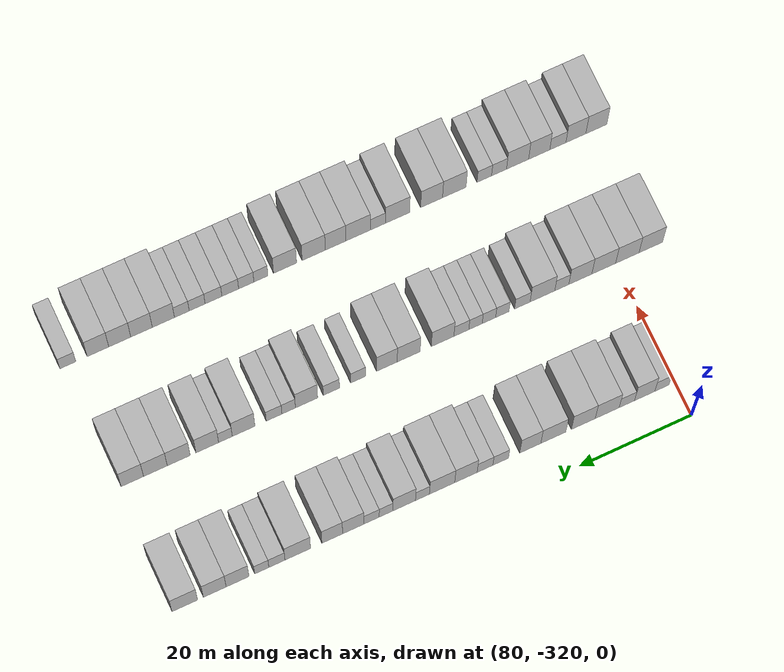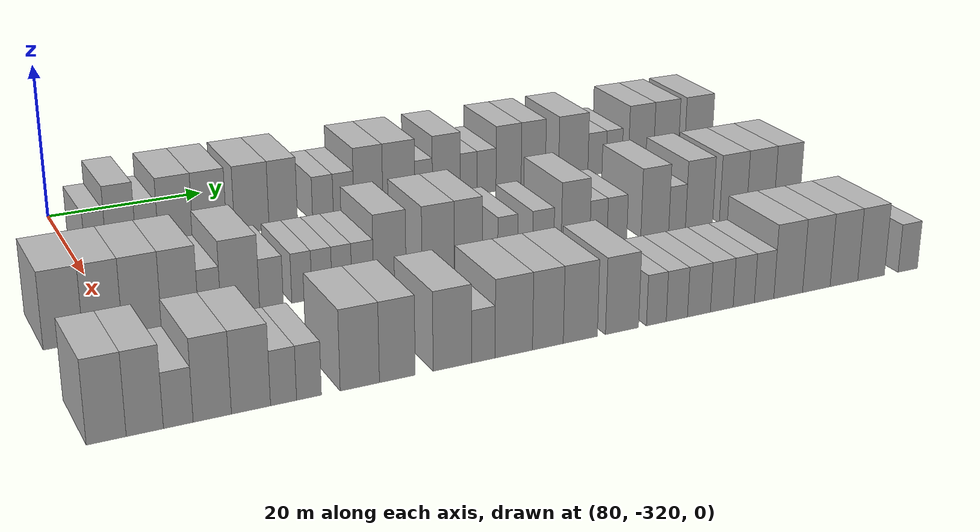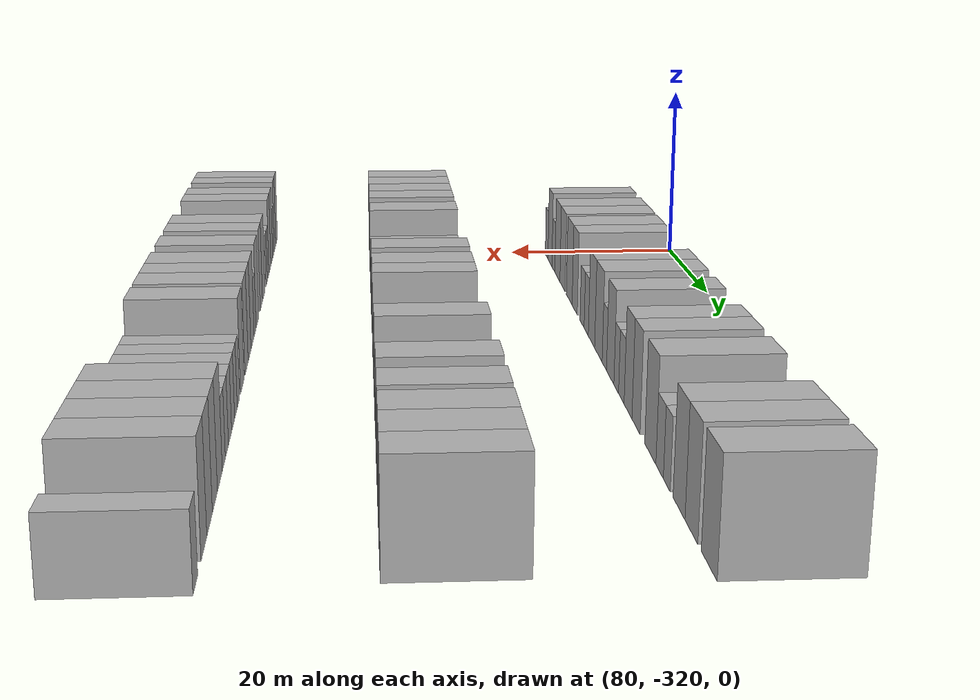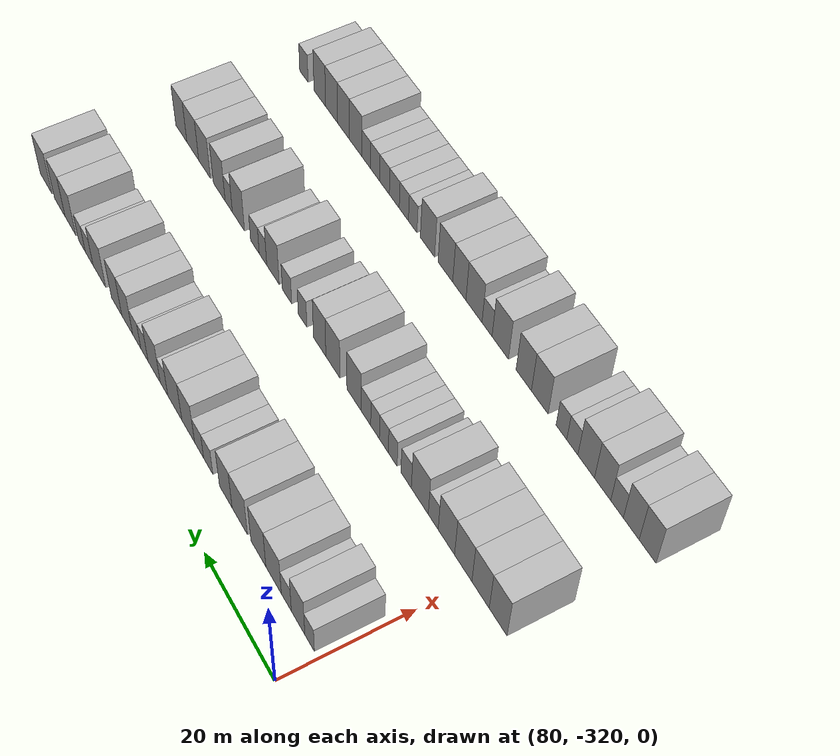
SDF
<sdf version="1.6">
 <world name="default">
  <model name="building_570">
   <static>1</static>
   <pose>91.0000 -317.6164 0 0.000000 0.000000 0.000000</pose>
   <link name="link">
    <pose>0 0 3.00 0 0 0</pose>
    <collision name="collision"><geometry><box><size>10.0000 2.5468 6.0000</size></box></geometry></collision>
    <visual name="visual">
     <cast_shadows>0</cast_shadows>
     <geometry><box><size>10.0000 2.5468 6.0000</size></box></geometry>
     <material>
      <script>
       <uri>model://HANNAS_wall/materials/scripts</uri>
       <uri>model://HANNAS_wall/materials/textures</uri>
       <name>vrc/HANNAS_wall</name>
      </script>
     </material>
    </visual>
   </link>
  </model>
  <model name="building_571">
   <static>1</static>
   <pose>91.0000 -314.5250 0 0.000000 0.000000 0.000000</pose>
   <link name="link">
    <pose>0 0 4.50 0 0 0</pose>
    <collision name="collision"><geometry><box><size>10.0000 3.6360 9.0000</size></box></geometry></collision>
    <visual name="visual">
     <cast_shadows>0</cast_shadows>
     <geometry><box><size>10.0000 3.6360 9.0000</size></box></geometry>
     <material>
      <script>
       <uri>model://HANNAS_wall/materials/scripts</uri>
       <uri>model://HANNAS_wall/materials/textures</uri>
       <name>vrc/HANNAS_wall</name>
      </script>
     </material>
    </visual>
   </link>
  </model>
  <model name="building_572">
   <static>1</static>
   <pose>91.0000 -311.3290 0 0.000000 0.000000 0.000000</pose>
   <link name="link">
    <pose>0 0 3.00 0 0 0</pose>
    <collision name="collision"><geometry><box><size>10.0000 2.7561 6.0000</size></box></geometry></collision>
    <visual name="visual">
     <cast_shadows>0</cast_shadows>
     <geometry><box><size>10.0000 2.7561 6.0000</size></box></geometry>
     <material>
      <script>
       <uri>model://HANNAS_wall/materials/scripts</uri>
       <uri>model://HANNAS_wall/materials/textures</uri>
       <name>vrc/HANNAS_wall</name>
      </script>
     </material>
    </visual>
   </link>
  </model>
  <model name="building_573">
   <static>1</static>
   <pose>91.0000 -307.7948 0 0.000000 0.000000 0.000000</pose>
   <link name="link">
    <pose>0 0 4.50 0 0 0</pose>
    <collision name="collision"><geometry><box><size>10.0000 4.3124 9.0000</size></box></geometry></collision>
    <visual name="visual">
     <cast_shadows>0</cast_shadows>
     <geometry><box><size>10.0000 4.3124 9.0000</size></box></geometry>
     <material>
      <script>
       <uri>model://HANNAS_wall/materials/scripts</uri>
       <uri>model://HANNAS_wall/materials/textures</uri>
       <name>vrc/HANNAS_wall</name>
      </script>
     </material>
    </visual>
   </link>
  </model>
  <model name="building_574">
   <static>1</static>
   <pose>91.0000 -303.5071 0 0.000000 0.000000 0.000000</pose>
   <link name="link">
    <pose>0 0 4.50 0 0 0</pose>
    <collision name="collision"><geometry><box><size>10.0000 4.2628 9.0000</size></box></geometry></collision>
    <visual name="visual">
     <cast_shadows>0</cast_shadows>
     <geometry><box><size>10.0000 4.2628 9.0000</size></box></geometry>
     <material>
      <script>
       <uri>model://HANNAS_wall/materials/scripts</uri>
       <uri>model://HANNAS_wall/materials/textures</uri>
       <name>vrc/HANNAS_wall</name>
      </script>
     </material>
    </visual>
   </link>
  </model>
  <model name="building_575">
   <static>1</static>
   <pose>91.0000 -298.1394 0 0.000000 0.000000 0.000000</pose>
   <link name="link">
    <pose>0 0 4.50 0 0 0</pose>
    <collision name="collision"><geometry><box><size>10.0000 4.4726 9.0000</size></box></geometry></collision>
    <visual name="visual">
     <cast_shadows>0</cast_shadows>
     <geometry><box><size>10.0000 4.4726 9.0000</size></box></geometry>
     <material>
      <script>
       <uri>model://HANNAS_wall/materials/scripts</uri>
       <uri>model://HANNAS_wall/materials/textures</uri>
       <name>vrc/HANNAS_wall</name>
      </script>
     </material>
    </visual>
   </link>
  </model>
  <model name="building_576">
   <static>1</static>
   <pose>91.0000 -294.0252 0 0.000000 0.000000 0.000000</pose>
   <link name="link">
    <pose>0 0 4.50 0 0 0</pose>
    <collision name="collision"><geometry><box><size>10.0000 3.7559 9.0000</size></box></geometry></collision>
    <visual name="visual">
     <cast_shadows>0</cast_shadows>
     <geometry><box><size>10.0000 3.7559 9.0000</size></box></geometry>
     <material>
      <script>
       <uri>model://HANNAS_wall/materials/scripts</uri>
       <uri>model://HANNAS_wall/materials/textures</uri>
       <name>vrc/HANNAS_wall</name>
      </script>
     </material>
    </visual>
   </link>
  </model>
  <model name="building_577">
   <static>1</static>
   <pose>91.0000 -288.7493 0 0.000000 0.000000 0.000000</pose>
   <link name="link">
    <pose>0 0 3.00 0 0 0</pose>
    <collision name="collision"><geometry><box><size>10.0000 2.7958 6.0000</size></box></geometry></collision>
    <visual name="visual">
     <cast_shadows>0</cast_shadows>
     <geometry><box><size>10.0000 2.7958 6.0000</size></box></geometry>
     <material>
      <script>
       <uri>model://HANNAS_wall/materials/scripts</uri>
       <uri>model://HANNAS_wall/materials/textures</uri>
       <name>vrc/HANNAS_wall</name>
      </script>
     </material>
    </visual>
   </link>
  </model>
  <model name="building_578">
   <static>1</static>
   <pose>91.0000 -285.9538 0 0.000000 0.000000 0.000000</pose>
   <link name="link">
    <pose>0 0 3.00 0 0 0</pose>
    <collision name="collision"><geometry><box><size>10.0000 2.7954 6.0000</size></box></geometry></collision>
    <visual name="visual">
     <cast_shadows>0</cast_shadows>
     <geometry><box><size>10.0000 2.7954 6.0000</size></box></geometry>
     <material>
      <script>
       <uri>model://HANNAS_wall/materials/scripts</uri>
       <uri>model://HANNAS_wall/materials/textures</uri>
       <name>vrc/HANNAS_wall</name>
      </script>
     </material>
    </visual>
   </link>
  </model>
  <model name="building_579">
   <static>1</static>
   <pose>91.0000 -282.5632 0 0.000000 0.000000 0.000000</pose>
   <link name="link">
    <pose>0 0 4.50 0 0 0</pose>
    <collision name="collision"><geometry><box><size>10.0000 3.9857 9.0000</size></box></geometry></collision>
    <visual name="visual">
     <cast_shadows>0</cast_shadows>
     <geometry><box><size>10.0000 3.9857 9.0000</size></box></geometry>
     <material>
      <script>
       <uri>model://HANNAS_wall/materials/scripts</uri>
       <uri>model://HANNAS_wall/materials/textures</uri>
       <name>vrc/HANNAS_wall</name>
      </script>
     </material>
    </visual>
   </link>
  </model>
  <model name="building_580">
   <static>1</static>
   <pose>91.0000 -278.3233 0 0.000000 0.000000 0.000000</pose>
   <link name="link">
    <pose>0 0 4.50 0 0 0</pose>
    <collision name="collision"><geometry><box><size>10.0000 4.4942 9.0000</size></box></geometry></collision>
    <visual name="visual">
     <cast_shadows>0</cast_shadows>
     <geometry><box><size>10.0000 4.4942 9.0000</size></box></geometry>
     <material>
      <script>
       <uri>model://HANNAS_wall/materials/scripts</uri>
       <uri>model://HANNAS_wall/materials/textures</uri>
       <name>vrc/HANNAS_wall</name>
      </script>
     </material>
    </visual>
   </link>
  </model>
  <model name="building_581">
   <static>1</static>
   <pose>91.0000 -274.8437 0 0.000000 0.000000 0.000000</pose>
   <link name="link">
    <pose>0 0 3.00 0 0 0</pose>
    <collision name="collision"><geometry><box><size>10.0000 2.4649 6.0000</size></box></geometry></collision>
    <visual name="visual">
     <cast_shadows>0</cast_shadows>
     <geometry><box><size>10.0000 2.4649 6.0000</size></box></geometry>
     <material>
      <script>
       <uri>model://HANNAS_wall/materials/scripts</uri>
       <uri>model://HANNAS_wall/materials/textures</uri>
       <name>vrc/HANNAS_wall</name>
      </script>
     </material>
    </visual>
   </link>
  </model>
  <model name="building_582">
   <static>1</static>
   <pose>91.0000 -271.6031 0 0.000000 0.000000 0.000000</pose>
   <link name="link">
    <pose>0 0 4.50 0 0 0</pose>
    <collision name="collision"><geometry><box><size>10.0000 4.0161 9.0000</size></box></geometry></collision>
    <visual name="visual">
     <cast_shadows>0</cast_shadows>
     <geometry><box><size>10.0000 4.0161 9.0000</size></box></geometry>
     <material>
      <script>
       <uri>model://HANNAS_wall/materials/scripts</uri>
       <uri>model://HANNAS_wall/materials/textures</uri>
       <name>vrc/HANNAS_wall</name>
      </script>
     </material>
    </visual>
   </link>
  </model>
  <model name="building_583">
   <static>1</static>
   <pose>91.0000 -268.3902 0 0.000000 0.000000 0.000000</pose>
   <link name="link">
    <pose>0 0 3.00 0 0 0</pose>
    <collision name="collision"><geometry><box><size>10.0000 2.4099 6.0000</size></box></geometry></collision>
    <visual name="visual">
     <cast_shadows>0</cast_shadows>
     <geometry><box><size>10.0000 2.4099 6.0000</size></box></geometry>
     <material>
      <script>
       <uri>model://HANNAS_wall/materials/scripts</uri>
       <uri>model://HANNAS_wall/materials/textures</uri>
       <name>vrc/HANNAS_wall</name>
      </script>
     </material>
    </visual>
   </link>
  </model>
  <model name="building_584">
   <static>1</static>
   <pose>91.0000 -265.8083 0 0.000000 0.000000 0.000000</pose>
   <link name="link">
    <pose>0 0 3.00 0 0 0</pose>
    <collision name="collision"><geometry><box><size>10.0000 2.7539 6.0000</size></box></geometry></collision>
    <visual name="visual">
     <cast_shadows>0</cast_shadows>
     <geometry><box><size>10.0000 2.7539 6.0000</size></box></geometry>
     <material>
      <script>
       <uri>model://HANNAS_wall/materials/scripts</uri>
       <uri>model://HANNAS_wall/materials/textures</uri>
       <name>vrc/HANNAS_wall</name>
      </script>
     </material>
    </visual>
   </link>
  </model>
  <model name="building_585">
   <static>1</static>
   <pose>91.0000 -262.5719 0 0.000000 0.000000 0.000000</pose>
   <link name="link">
    <pose>0 0 4.50 0 0 0</pose>
    <collision name="collision"><geometry><box><size>10.0000 3.7190 9.0000</size></box></geometry></collision>
    <visual name="visual">
     <cast_shadows>0</cast_shadows>
     <geometry><box><size>10.0000 3.7190 9.0000</size></box></geometry>
     <material>
      <script>
       <uri>model://HANNAS_wall/materials/scripts</uri>
       <uri>model://HANNAS_wall/materials/textures</uri>
       <name>vrc/HANNAS_wall</name>
      </script>
     </material>
    </visual>
   </link>
  </model>
  <model name="building_586">
   <static>1</static>
   <pose>91.0000 -258.8966 0 0.000000 0.000000 0.000000</pose>
   <link name="link">
    <pose>0 0 4.50 0 0 0</pose>
    <collision name="collision"><geometry><box><size>10.0000 3.6315 9.0000</size></box></geometry></collision>
    <visual name="visual">
     <cast_shadows>0</cast_shadows>
     <geometry><box><size>10.0000 3.6315 9.0000</size></box></geometry>
     <material>
      <script>
       <uri>model://HANNAS_wall/materials/scripts</uri>
       <uri>model://HANNAS_wall/materials/textures</uri>
       <name>vrc/HANNAS_wall</name>
      </script>
     </material>
    </visual>
   </link>
  </model>
  <model name="building_587">
   <static>1</static>
   <pose>91.0000 -252.8310 0 0.000000 0.000000 0.000000</pose>
   <link name="link">
    <pose>0 0 4.50 0 0 0</pose>
    <collision name="collision"><geometry><box><size>10.0000 4.4999 9.0000</size></box></geometry></collision>
    <visual name="visual">
     <cast_shadows>0</cast_shadows>
     <geometry><box><size>10.0000 4.4999 9.0000</size></box></geometry>
     <material>
      <script>
       <uri>model://HANNAS_wall/materials/scripts</uri>
       <uri>model://HANNAS_wall/materials/textures</uri>
       <name>vrc/HANNAS_wall</name>
      </script>
     </material>
    </visual>
   </link>
  </model>
  <model name="building_588">
   <static>1</static>
   <pose>91.0000 -249.1622 0 0.000000 0.000000 0.000000</pose>
   <link name="link">
    <pose>0 0 3.00 0 0 0</pose>
    <collision name="collision"><geometry><box><size>10.0000 2.8377 6.0000</size></box></geometry></collision>
    <visual name="visual">
     <cast_shadows>0</cast_shadows>
     <geometry><box><size>10.0000 2.8377 6.0000</size></box></geometry>
     <material>
      <script>
       <uri>model://HANNAS_wall/materials/scripts</uri>
       <uri>model://HANNAS_wall/materials/textures</uri>
       <name>vrc/HANNAS_wall</name>
      </script>
     </material>
    </visual>
   </link>
  </model>
  <model name="building_589">
   <static>1</static>
   <pose>91.0000 -246.5064 0 0.000000 0.000000 0.000000</pose>
   <link name="link">
    <pose>0 0 3.00 0 0 0</pose>
    <collision name="collision"><geometry><box><size>10.0000 2.4738 6.0000</size></box></geometry></collision>
    <visual name="visual">
     <cast_shadows>0</cast_shadows>
     <geometry><box><size>10.0000 2.4738 6.0000</size></box></geometry>
     <material>
      <script>
       <uri>model://HANNAS_wall/materials/scripts</uri>
       <uri>model://HANNAS_wall/materials/textures</uri>
       <name>vrc/HANNAS_wall</name>
      </script>
     </material>
    </visual>
   </link>
  </model>
  <model name="building_590">
   <static>1</static>
   <pose>91.0000 -242.2678 0 0.000000 0.000000 0.000000</pose>
   <link name="link">
    <pose>0 0 4.50 0 0 0</pose>
    <collision name="collision"><geometry><box><size>10.0000 4.0034 9.0000</size></box></geometry></collision>
    <visual name="visual">
     <cast_shadows>0</cast_shadows>
     <geometry><box><size>10.0000 4.0034 9.0000</size></box></geometry>
     <material>
      <script>
       <uri>model://HANNAS_wall/materials/scripts</uri>
       <uri>model://HANNAS_wall/materials/textures</uri>
       <name>vrc/HANNAS_wall</name>
      </script>
     </material>
    </visual>
   </link>
  </model>
  <model name="building_591">
   <static>1</static>
   <pose>91.0000 -238.2731 0 0.000000 0.000000 0.000000</pose>
   <link name="link">
    <pose>0 0 4.50 0 0 0</pose>
    <collision name="collision"><geometry><box><size>10.0000 3.9860 9.0000</size></box></geometry></collision>
    <visual name="visual">
     <cast_shadows>0</cast_shadows>
     <geometry><box><size>10.0000 3.9860 9.0000</size></box></geometry>
     <material>
      <script>
       <uri>model://HANNAS_wall/materials/scripts</uri>
       <uri>model://HANNAS_wall/materials/textures</uri>
       <name>vrc/HANNAS_wall</name>
      </script>
     </material>
    </visual>
   </link>
  </model>
  <model name="building_592">
   <static>1</static>
   <pose>91.0000 -233.0409 0 0.000000 0.000000 0.000000</pose>
   <link name="link">
    <pose>0 0 4.50 0 0 0</pose>
    <collision name="collision"><geometry><box><size>10.0000 4.4783 9.0000</size></box></geometry></collision>
    <visual name="visual">
     <cast_shadows>0</cast_shadows>
     <geometry><box><size>10.0000 4.4783 9.0000</size></box></geometry>
     <material>
      <script>
       <uri>model://HANNAS_wall/materials/scripts</uri>
       <uri>model://HANNAS_wall/materials/textures</uri>
       <name>vrc/HANNAS_wall</name>
      </script>
     </material>
    </visual>
   </link>
  </model>
  <model name="building_761">
   <static>1</static>
   <pose>113.0000 -326.3911 0 0.000000 0.000000 0.000000</pose>
   <link name="link">
    <pose>0 0 4.50 0 0 0</pose>
    <collision name="collision"><geometry><box><size>10.0000 4.2738 9.0000</size></box></geometry></collision>
    <visual name="visual">
     <cast_shadows>0</cast_shadows>
     <geometry><box><size>10.0000 4.2738 9.0000</size></box></geometry>
     <material>
      <script>
       <uri>model://HANNAS_wall/materials/scripts</uri>
       <uri>model://HANNAS_wall/materials/textures</uri>
       <name>vrc/HANNAS_wall</name>
      </script>
     </material>
    </visual>
   </link>
  </model>
  <model name="building_762">
   <static>1</static>
   <pose>113.0000 -322.1320 0 0.000000 0.000000 0.000000</pose>
   <link name="link">
    <pose>0 0 4.50 0 0 0</pose>
    <collision name="collision"><geometry><box><size>10.0000 4.2444 9.0000</size></box></geometry></collision>
    <visual name="visual">
     <cast_shadows>0</cast_shadows>
     <geometry><box><size>10.0000 4.2444 9.0000</size></box></geometry>
     <material>
      <script>
       <uri>model://HANNAS_wall/materials/scripts</uri>
       <uri>model://HANNAS_wall/materials/textures</uri>
       <name>vrc/HANNAS_wall</name>
      </script>
     </material>
    </visual>
   </link>
  </model>
  <model name="building_763">
   <static>1</static>
   <pose>113.0000 -317.8531 0 0.000000 0.000000 0.000000</pose>
   <link name="link">
    <pose>0 0 4.50 0 0 0</pose>
    <collision name="collision"><geometry><box><size>10.0000 4.3134 9.0000</size></box></geometry></collision>
    <visual name="visual">
     <cast_shadows>0</cast_shadows>
     <geometry><box><size>10.0000 4.3134 9.0000</size></box></geometry>
     <material>
      <script>
       <uri>model://HANNAS_wall/materials/scripts</uri>
       <uri>model://HANNAS_wall/materials/textures</uri>
       <name>vrc/HANNAS_wall</name>
      </script>
     </material>
    </visual>
   </link>
  </model>
  <model name="building_764">
   <static>1</static>
   <pose>113.0000 -313.6157 0 0.000000 0.000000 0.000000</pose>
   <link name="link">
    <pose>0 0 4.50 0 0 0</pose>
    <collision name="collision"><geometry><box><size>10.0000 4.1614 9.0000</size></box></geometry></collision>
    <visual name="visual">
     <cast_shadows>0</cast_shadows>
     <geometry><box><size>10.0000 4.1614 9.0000</size></box></geometry>
     <material>
      <script>
       <uri>model://HANNAS_wall/materials/scripts</uri>
       <uri>model://HANNAS_wall/materials/textures</uri>
       <name>vrc/HANNAS_wall</name>
      </script>
     </material>
    </visual>
   </link>
  </model>
  <model name="building_765">
   <static>1</static>
   <pose>113.0000 -310.2583 0 0.000000 0.000000 0.000000</pose>
   <link name="link">
    <pose>0 0 3.00 0 0 0</pose>
    <collision name="collision"><geometry><box><size>10.0000 2.5534 6.0000</size></box></geometry></collision>
    <visual name="visual">
     <cast_shadows>0</cast_shadows>
     <geometry><box><size>10.0000 2.5534 6.0000</size></box></geometry>
     <material>
      <script>
       <uri>model://HANNAS_wall/materials/scripts</uri>
       <uri>model://HANNAS_wall/materials/textures</uri>
       <name>vrc/HANNAS_wall</name>
      </script>
     </material>
    </visual>
   </link>
  </model>
  <model name="building_766">
   <static>1</static>
   <pose>113.0000 -306.7530 0 0.000000 0.000000 0.000000</pose>
   <link name="link">
    <pose>0 0 4.50 0 0 0</pose>
    <collision name="collision"><geometry><box><size>10.0000 4.4572 9.0000</size></box></geometry></collision>
    <visual name="visual">
     <cast_shadows>0</cast_shadows>
     <geometry><box><size>10.0000 4.4572 9.0000</size></box></geometry>
     <material>
      <script>
       <uri>model://HANNAS_wall/materials/scripts</uri>
       <uri>model://HANNAS_wall/materials/textures</uri>
       <name>vrc/HANNAS_wall</name>
      </script>
     </material>
    </visual>
   </link>
  </model>
  <model name="building_767">
   <static>1</static>
   <pose>113.0000 -303.1295 0 0.000000 0.000000 0.000000</pose>
   <link name="link">
    <pose>0 0 3.00 0 0 0</pose>
    <collision name="collision"><geometry><box><size>10.0000 2.7899 6.0000</size></box></geometry></collision>
    <visual name="visual">
     <cast_shadows>0</cast_shadows>
     <geometry><box><size>10.0000 2.7899 6.0000</size></box></geometry>
     <material>
      <script>
       <uri>model://HANNAS_wall/materials/scripts</uri>
       <uri>model://HANNAS_wall/materials/textures</uri>
       <name>vrc/HANNAS_wall</name>
      </script>
     </material>
    </visual>
   </link>
  </model>
  <model name="building_768">
   <static>1</static>
   <pose>113.0000 -299.5313 0 0.000000 0.000000 0.000000</pose>
   <link name="link">
    <pose>0 0 3.00 0 0 0</pose>
    <collision name="collision"><geometry><box><size>10.0000 2.4064 6.0000</size></box></geometry></collision>
    <visual name="visual">
     <cast_shadows>0</cast_shadows>
     <geometry><box><size>10.0000 2.4064 6.0000</size></box></geometry>
     <material>
      <script>
       <uri>model://HANNAS_wall/materials/scripts</uri>
       <uri>model://HANNAS_wall/materials/textures</uri>
       <name>vrc/HANNAS_wall</name>
      </script>
     </material>
    </visual>
   </link>
  </model>
  <model name="building_769">
   <static>1</static>
   <pose>113.0000 -297.1167 0 0.000000 0.000000 0.000000</pose>
   <link name="link">
    <pose>0 0 3.00 0 0 0</pose>
    <collision name="collision"><geometry><box><size>10.0000 2.4228 6.0000</size></box></geometry></collision>
    <visual name="visual">
     <cast_shadows>0</cast_shadows>
     <geometry><box><size>10.0000 2.4228 6.0000</size></box></geometry>
     <material>
      <script>
       <uri>model://HANNAS_wall/materials/scripts</uri>
       <uri>model://HANNAS_wall/materials/textures</uri>
       <name>vrc/HANNAS_wall</name>
      </script>
     </material>
    </visual>
   </link>
  </model>
  <model name="building_770">
   <static>1</static>
   <pose>113.0000 -294.7018 0 0.000000 0.000000 0.000000</pose>
   <link name="link">
    <pose>0 0 3.00 0 0 0</pose>
    <collision name="collision"><geometry><box><size>10.0000 2.4069 6.0000</size></box></geometry></collision>
    <visual name="visual">
     <cast_shadows>0</cast_shadows>
     <geometry><box><size>10.0000 2.4069 6.0000</size></box></geometry>
     <material>
      <script>
       <uri>model://HANNAS_wall/materials/scripts</uri>
       <uri>model://HANNAS_wall/materials/textures</uri>
       <name>vrc/HANNAS_wall</name>
      </script>
     </material>
    </visual>
   </link>
  </model>
  <model name="building_771">
   <static>1</static>
   <pose>113.0000 -292.1594 0 0.000000 0.000000 0.000000</pose>
   <link name="link">
    <pose>0 0 3.00 0 0 0</pose>
    <collision name="collision"><geometry><box><size>10.0000 2.6780 6.0000</size></box></geometry></collision>
    <visual name="visual">
     <cast_shadows>0</cast_shadows>
     <geometry><box><size>10.0000 2.6780 6.0000</size></box></geometry>
     <material>
      <script>
       <uri>model://HANNAS_wall/materials/scripts</uri>
       <uri>model://HANNAS_wall/materials/textures</uri>
       <name>vrc/HANNAS_wall</name>
      </script>
     </material>
    </visual>
   </link>
  </model>
  <model name="building_772">
   <static>1</static>
   <pose>113.0000 -288.7919 0 0.000000 0.000000 0.000000</pose>
   <link name="link">
    <pose>0 0 4.50 0 0 0</pose>
    <collision name="collision"><geometry><box><size>10.0000 4.0569 9.0000</size></box></geometry></collision>
    <visual name="visual">
     <cast_shadows>0</cast_shadows>
     <geometry><box><size>10.0000 4.0569 9.0000</size></box></geometry>
     <material>
      <script>
       <uri>model://HANNAS_wall/materials/scripts</uri>
       <uri>model://HANNAS_wall/materials/textures</uri>
       <name>vrc/HANNAS_wall</name>
      </script>
     </material>
    </visual>
   </link>
  </model>
  <model name="building_773">
   <static>1</static>
   <pose>113.0000 -282.7048 0 0.000000 0.000000 0.000000</pose>
   <link name="link">
    <pose>0 0 4.50 0 0 0</pose>
    <collision name="collision"><geometry><box><size>10.0000 4.1172 9.0000</size></box></geometry></collision>
    <visual name="visual">
     <cast_shadows>0</cast_shadows>
     <geometry><box><size>10.0000 4.1172 9.0000</size></box></geometry>
     <material>
      <script>
       <uri>model://HANNAS_wall/materials/scripts</uri>
       <uri>model://HANNAS_wall/materials/textures</uri>
       <name>vrc/HANNAS_wall</name>
      </script>
     </material>
    </visual>
   </link>
  </model>
  <model name="building_774">
   <static>1</static>
   <pose>113.0000 -278.8148 0 0.000000 0.000000 0.000000</pose>
   <link name="link">
    <pose>0 0 4.50 0 0 0</pose>
    <collision name="collision"><geometry><box><size>10.0000 3.6628 9.0000</size></box></geometry></collision>
    <visual name="visual">
     <cast_shadows>0</cast_shadows>
     <geometry><box><size>10.0000 3.6628 9.0000</size></box></geometry>
     <material>
      <script>
       <uri>model://HANNAS_wall/materials/scripts</uri>
       <uri>model://HANNAS_wall/materials/textures</uri>
       <name>vrc/HANNAS_wall</name>
      </script>
     </material>
    </visual>
   </link>
  </model>
  <model name="building_775">
   <static>1</static>
   <pose>113.0000 -273.6693 0 0.000000 0.000000 0.000000</pose>
   <link name="link">
    <pose>0 0 3.00 0 0 0</pose>
    <collision name="collision"><geometry><box><size>10.0000 2.6284 6.0000</size></box></geometry></collision>
    <visual name="visual">
     <cast_shadows>0</cast_shadows>
     <geometry><box><size>10.0000 2.6284 6.0000</size></box></geometry>
     <material>
      <script>
       <uri>model://HANNAS_wall/materials/scripts</uri>
       <uri>model://HANNAS_wall/materials/textures</uri>
       <name>vrc/HANNAS_wall</name>
      </script>
     </material>
    </visual>
   </link>
  </model>
  <model name="building_776">
   <static>1</static>
   <pose>113.0000 -268.9133 0 0.000000 0.000000 0.000000</pose>
   <link name="link">
    <pose>0 0 3.00 0 0 0</pose>
    <collision name="collision"><geometry><box><size>10.0000 2.8837 6.0000</size></box></geometry></collision>
    <visual name="visual">
     <cast_shadows>0</cast_shadows>
     <geometry><box><size>10.0000 2.8837 6.0000</size></box></geometry>
     <material>
      <script>
       <uri>model://HANNAS_wall/materials/scripts</uri>
       <uri>model://HANNAS_wall/materials/textures</uri>
       <name>vrc/HANNAS_wall</name>
      </script>
     </material>
    </visual>
   </link>
  </model>
  <model name="building_777">
   <static>1</static>
   <pose>113.0000 -264.4971 0 0.000000 0.000000 0.000000</pose>
   <link name="link">
    <pose>0 0 4.50 0 0 0</pose>
    <collision name="collision"><geometry><box><size>10.0000 3.9487 9.0000</size></box></geometry></collision>
    <visual name="visual">
     <cast_shadows>0</cast_shadows>
     <geometry><box><size>10.0000 3.9487 9.0000</size></box></geometry>
     <material>
      <script>
       <uri>model://HANNAS_wall/materials/scripts</uri>
       <uri>model://HANNAS_wall/materials/textures</uri>
       <name>vrc/HANNAS_wall</name>
      </script>
     </material>
    </visual>
   </link>
  </model>
  <model name="building_778">
   <static>1</static>
   <pose>113.0000 -261.3227 0 0.000000 0.000000 0.000000</pose>
   <link name="link">
    <pose>0 0 3.00 0 0 0</pose>
    <collision name="collision"><geometry><box><size>10.0000 2.4000 6.0000</size></box></geometry></collision>
    <visual name="visual">
     <cast_shadows>0</cast_shadows>
     <geometry><box><size>10.0000 2.4000 6.0000</size></box></geometry>
     <material>
      <script>
       <uri>model://HANNAS_wall/materials/scripts</uri>
       <uri>model://HANNAS_wall/materials/textures</uri>
       <name>vrc/HANNAS_wall</name>
      </script>
     </material>
    </visual>
   </link>
  </model>
  <model name="building_779">
   <static>1</static>
   <pose>113.0000 -258.7313 0 0.000000 0.000000 0.000000</pose>
   <link name="link">
    <pose>0 0 3.00 0 0 0</pose>
    <collision name="collision"><geometry><box><size>10.0000 2.7826 6.0000</size></box></geometry></collision>
    <visual name="visual">
     <cast_shadows>0</cast_shadows>
     <geometry><box><size>10.0000 2.7826 6.0000</size></box></geometry>
     <material>
      <script>
       <uri>model://HANNAS_wall/materials/scripts</uri>
       <uri>model://HANNAS_wall/materials/textures</uri>
       <name>vrc/HANNAS_wall</name>
      </script>
     </material>
    </visual>
   </link>
  </model>
  <model name="building_780">
   <static>1</static>
   <pose>113.0000 -253.3357 0 0.000000 0.000000 0.000000</pose>
   <link name="link">
    <pose>0 0 4.50 0 0 0</pose>
    <collision name="collision"><geometry><box><size>10.0000 4.0087 9.0000</size></box></geometry></collision>
    <visual name="visual">
     <cast_shadows>0</cast_shadows>
     <geometry><box><size>10.0000 4.0087 9.0000</size></box></geometry>
     <material>
      <script>
       <uri>model://HANNAS_wall/materials/scripts</uri>
       <uri>model://HANNAS_wall/materials/textures</uri>
       <name>vrc/HANNAS_wall</name>
      </script>
     </material>
    </visual>
   </link>
  </model>
  <model name="building_781">
   <static>1</static>
   <pose>113.0000 -250.1159 0 0.000000 0.000000 0.000000</pose>
   <link name="link">
    <pose>0 0 3.00 0 0 0</pose>
    <collision name="collision"><geometry><box><size>10.0000 2.4308 6.0000</size></box></geometry></collision>
    <visual name="visual">
     <cast_shadows>0</cast_shadows>
     <geometry><box><size>10.0000 2.4308 6.0000</size></box></geometry>
     <material>
      <script>
       <uri>model://HANNAS_wall/materials/scripts</uri>
       <uri>model://HANNAS_wall/materials/textures</uri>
       <name>vrc/HANNAS_wall</name>
      </script>
     </material>
    </visual>
   </link>
  </model>
  <model name="building_782">
   <static>1</static>
   <pose>113.0000 -246.8986 0 0.000000 0.000000 0.000000</pose>
   <link name="link">
    <pose>0 0 4.50 0 0 0</pose>
    <collision name="collision"><geometry><box><size>10.0000 4.0038 9.0000</size></box></geometry></collision>
    <visual name="visual">
     <cast_shadows>0</cast_shadows>
     <geometry><box><size>10.0000 4.0038 9.0000</size></box></geometry>
     <material>
      <script>
       <uri>model://HANNAS_wall/materials/scripts</uri>
       <uri>model://HANNAS_wall/materials/textures</uri>
       <name>vrc/HANNAS_wall</name>
      </script>
     </material>
    </visual>
   </link>
  </model>
  <model name="building_783">
   <static>1</static>
   <pose>113.0000 -241.8687 0 0.000000 0.000000 0.000000</pose>
   <link name="link">
    <pose>0 0 4.50 0 0 0</pose>
    <collision name="collision"><geometry><box><size>10.0000 4.0561 9.0000</size></box></geometry></collision>
    <visual name="visual">
     <cast_shadows>0</cast_shadows>
     <geometry><box><size>10.0000 4.0561 9.0000</size></box></geometry>
     <material>
      <script>
       <uri>model://HANNAS_wall/materials/scripts</uri>
       <uri>model://HANNAS_wall/materials/textures</uri>
       <name>vrc/HANNAS_wall</name>
      </script>
     </material>
    </visual>
   </link>
  </model>
  <model name="building_784">
   <static>1</static>
   <pose>113.0000 -237.7551 0 0.000000 0.000000 0.000000</pose>
   <link name="link">
    <pose>0 0 4.50 0 0 0</pose>
    <collision name="collision"><geometry><box><size>10.0000 4.1710 9.0000</size></box></geometry></collision>
    <visual name="visual">
     <cast_shadows>0</cast_shadows>
     <geometry><box><size>10.0000 4.1710 9.0000</size></box></geometry>
     <material>
      <script>
       <uri>model://HANNAS_wall/materials/scripts</uri>
       <uri>model://HANNAS_wall/materials/textures</uri>
       <name>vrc/HANNAS_wall</name>
      </script>
     </material>
    </visual>
   </link>
  </model>
  <model name="building_785">
   <static>1</static>
   <pose>113.0000 -233.6895 0 0.000000 0.000000 0.000000</pose>
   <link name="link">
    <pose>0 0 4.50 0 0 0</pose>
    <collision name="collision"><geometry><box><size>10.0000 3.9604 9.0000</size></box></geometry></collision>
    <visual name="visual">
     <cast_shadows>0</cast_shadows>
     <geometry><box><size>10.0000 3.9604 9.0000</size></box></geometry>
     <material>
      <script>
       <uri>model://HANNAS_wall/materials/scripts</uri>
       <uri>model://HANNAS_wall/materials/textures</uri>
       <name>vrc/HANNAS_wall</name>
      </script>
     </material>
    </visual>
   </link>
  </model>
  <model name="building_956">
   <static>1</static>
   <pose>135.0000 -327.1650 0 0.000000 0.000000 0.000000</pose>
   <link name="link">
    <pose>0 0 4.50 0 0 0</pose>
    <collision name="collision"><geometry><box><size>10.0000 3.8408 9.0000</size></box></geometry></collision>
    <visual name="visual">
     <cast_shadows>0</cast_shadows>
     <geometry><box><size>10.0000 3.8408 9.0000</size></box></geometry>
     <material>
      <script>
       <uri>model://HANNAS_wall/materials/scripts</uri>
       <uri>model://HANNAS_wall/materials/textures</uri>
       <name>vrc/HANNAS_wall</name>
      </script>
     </material>
    </visual>
   </link>
  </model>
  <model name="building_957">
   <static>1</static>
   <pose>135.0000 -323.4278 0 0.000000 0.000000 0.000000</pose>
   <link name="link">
    <pose>0 0 4.50 0 0 0</pose>
    <collision name="collision"><geometry><box><size>10.0000 3.6335 9.0000</size></box></geometry></collision>
    <visual name="visual">
     <cast_shadows>0</cast_shadows>
     <geometry><box><size>10.0000 3.6335 9.0000</size></box></geometry>
     <material>
      <script>
       <uri>model://HANNAS_wall/materials/scripts</uri>
       <uri>model://HANNAS_wall/materials/textures</uri>
       <name>vrc/HANNAS_wall</name>
      </script>
     </material>
    </visual>
   </link>
  </model>
  <model name="building_958">
   <static>1</static>
   <pose>135.0000 -320.1335 0 0.000000 0.000000 0.000000</pose>
   <link name="link">
    <pose>0 0 3.00 0 0 0</pose>
    <collision name="collision"><geometry><box><size>10.0000 2.9551 6.0000</size></box></geometry></collision>
    <visual name="visual">
     <cast_shadows>0</cast_shadows>
     <geometry><box><size>10.0000 2.9551 6.0000</size></box></geometry>
     <material>
      <script>
       <uri>model://HANNAS_wall/materials/scripts</uri>
       <uri>model://HANNAS_wall/materials/textures</uri>
       <name>vrc/HANNAS_wall</name>
      </script>
     </material>
    </visual>
   </link>
  </model>
  <model name="building_959">
   <static>1</static>
   <pose>135.0000 -316.7271 0 0.000000 0.000000 0.000000</pose>
   <link name="link">
    <pose>0 0 4.50 0 0 0</pose>
    <collision name="collision"><geometry><box><size>10.0000 3.8577 9.0000</size></box></geometry></collision>
    <visual name="visual">
     <cast_shadows>0</cast_shadows>
     <geometry><box><size>10.0000 3.8577 9.0000</size></box></geometry>
     <material>
      <script>
       <uri>model://HANNAS_wall/materials/scripts</uri>
       <uri>model://HANNAS_wall/materials/textures</uri>
       <name>vrc/HANNAS_wall</name>
      </script>
     </material>
    </visual>
   </link>
  </model>
  <model name="building_960">
   <static>1</static>
   <pose>135.0000 -312.7889 0 0.000000 0.000000 0.000000</pose>
   <link name="link">
    <pose>0 0 4.50 0 0 0</pose>
    <collision name="collision"><geometry><box><size>10.0000 4.0187 9.0000</size></box></geometry></collision>
    <visual name="visual">
     <cast_shadows>0</cast_shadows>
     <geometry><box><size>10.0000 4.0187 9.0000</size></box></geometry>
     <material>
      <script>
       <uri>model://HANNAS_wall/materials/scripts</uri>
       <uri>model://HANNAS_wall/materials/textures</uri>
       <name>vrc/HANNAS_wall</name>
      </script>
     </material>
    </visual>
   </link>
  </model>
  <model name="building_961">
   <static>1</static>
   <pose>135.0000 -309.4167 0 0.000000 0.000000 0.000000</pose>
   <link name="link">
    <pose>0 0 3.00 0 0 0</pose>
    <collision name="collision"><geometry><box><size>10.0000 2.7258 6.0000</size></box></geometry></collision>
    <visual name="visual">
     <cast_shadows>0</cast_shadows>
     <geometry><box><size>10.0000 2.7258 6.0000</size></box></geometry>
     <material>
      <script>
       <uri>model://HANNAS_wall/materials/scripts</uri>
       <uri>model://HANNAS_wall/materials/textures</uri>
       <name>vrc/HANNAS_wall</name>
      </script>
     </material>
    </visual>
   </link>
  </model>
  <model name="building_962">
   <static>1</static>
   <pose>135.0000 -306.7372 0 0.000000 0.000000 0.000000</pose>
   <link name="link">
    <pose>0 0 3.00 0 0 0</pose>
    <collision name="collision"><geometry><box><size>10.0000 2.6333 6.0000</size></box></geometry></collision>
    <visual name="visual">
     <cast_shadows>0</cast_shadows>
     <geometry><box><size>10.0000 2.6333 6.0000</size></box></geometry>
     <material>
      <script>
       <uri>model://HANNAS_wall/materials/scripts</uri>
       <uri>model://HANNAS_wall/materials/textures</uri>
       <name>vrc/HANNAS_wall</name>
      </script>
     </material>
    </visual>
   </link>
  </model>
  <model name="building_963">
   <static>1</static>
   <pose>135.0000 -301.2870 0 0.000000 0.000000 0.000000</pose>
   <link name="link">
    <pose>0 0 4.50 0 0 0</pose>
    <collision name="collision"><geometry><box><size>10.0000 4.2670 9.0000</size></box></geometry></collision>
    <visual name="visual">
     <cast_shadows>0</cast_shadows>
     <geometry><box><size>10.0000 4.2670 9.0000</size></box></geometry>
     <material>
      <script>
       <uri>model://HANNAS_wall/materials/scripts</uri>
       <uri>model://HANNAS_wall/materials/textures</uri>
       <name>vrc/HANNAS_wall</name>
      </script>
     </material>
    </visual>
   </link>
  </model>
  <model name="building_964">
   <static>1</static>
   <pose>135.0000 -297.1686 0 0.000000 0.000000 0.000000</pose>
   <link name="link">
    <pose>0 0 4.50 0 0 0</pose>
    <collision name="collision"><geometry><box><size>10.0000 3.9698 9.0000</size></box></geometry></collision>
    <visual name="visual">
     <cast_shadows>0</cast_shadows>
     <geometry><box><size>10.0000 3.9698 9.0000</size></box></geometry>
     <material>
      <script>
       <uri>model://HANNAS_wall/materials/scripts</uri>
       <uri>model://HANNAS_wall/materials/textures</uri>
       <name>vrc/HANNAS_wall</name>
      </script>
     </material>
    </visual>
   </link>
  </model>
  <model name="building_965">
   <static>1</static>
   <pose>135.0000 -290.9988 0 0.000000 0.000000 0.000000</pose>
   <link name="link">
    <pose>0 0 4.50 0 0 0</pose>
    <collision name="collision"><geometry><box><size>10.0000 4.3699 9.0000</size></box></geometry></collision>
    <visual name="visual">
     <cast_shadows>0</cast_shadows>
     <geometry><box><size>10.0000 4.3699 9.0000</size></box></geometry>
     <material>
      <script>
       <uri>model://HANNAS_wall/materials/scripts</uri>
       <uri>model://HANNAS_wall/materials/textures</uri>
       <name>vrc/HANNAS_wall</name>
      </script>
     </material>
    </visual>
   </link>
  </model>
  <model name="building_966">
   <static>1</static>
   <pose>135.0000 -287.4489 0 0.000000 0.000000 0.000000</pose>
   <link name="link">
    <pose>0 0 3.00 0 0 0</pose>
    <collision name="collision"><geometry><box><size>10.0000 2.7300 6.0000</size></box></geometry></collision>
    <visual name="visual">
     <cast_shadows>0</cast_shadows>
     <geometry><box><size>10.0000 2.7300 6.0000</size></box></geometry>
     <material>
      <script>
       <uri>model://HANNAS_wall/materials/scripts</uri>
       <uri>model://HANNAS_wall/materials/textures</uri>
       <name>vrc/HANNAS_wall</name>
      </script>
     </material>
    </visual>
   </link>
  </model>
  <model name="building_967">
   <static>1</static>
   <pose>135.0000 -283.8754 0 0.000000 0.000000 0.000000</pose>
   <link name="link">
    <pose>0 0 4.50 0 0 0</pose>
    <collision name="collision"><geometry><box><size>10.0000 4.4169 9.0000</size></box></geometry></collision>
    <visual name="visual">
     <cast_shadows>0</cast_shadows>
     <geometry><box><size>10.0000 4.4169 9.0000</size></box></geometry>
     <material>
      <script>
       <uri>model://HANNAS_wall/materials/scripts</uri>
       <uri>model://HANNAS_wall/materials/textures</uri>
       <name>vrc/HANNAS_wall</name>
      </script>
     </material>
    </visual>
   </link>
  </model>
  <model name="building_968">
   <static>1</static>
   <pose>135.0000 -279.8240 0 0.000000 0.000000 0.000000</pose>
   <link name="link">
    <pose>0 0 4.50 0 0 0</pose>
    <collision name="collision"><geometry><box><size>10.0000 3.6861 9.0000</size></box></geometry></collision>
    <visual name="visual">
     <cast_shadows>0</cast_shadows>
     <geometry><box><size>10.0000 3.6861 9.0000</size></box></geometry>
     <material>
      <script>
       <uri>model://HANNAS_wall/materials/scripts</uri>
       <uri>model://HANNAS_wall/materials/textures</uri>
       <name>vrc/HANNAS_wall</name>
      </script>
     </material>
    </visual>
   </link>
  </model>
  <model name="building_969">
   <static>1</static>
   <pose>135.0000 -275.9024 0 0.000000 0.000000 0.000000</pose>
   <link name="link">
    <pose>0 0 4.50 0 0 0</pose>
    <collision name="collision"><geometry><box><size>10.0000 4.1570 9.0000</size></box></geometry></collision>
    <visual name="visual">
     <cast_shadows>0</cast_shadows>
     <geometry><box><size>10.0000 4.1570 9.0000</size></box></geometry>
     <material>
      <script>
       <uri>model://HANNAS_wall/materials/scripts</uri>
       <uri>model://HANNAS_wall/materials/textures</uri>
       <name>vrc/HANNAS_wall</name>
      </script>
     </material>
    </visual>
   </link>
  </model>
  <model name="building_970">
   <static>1</static>
   <pose>135.0000 -270.7588 0 0.000000 0.000000 0.000000</pose>
   <link name="link">
    <pose>0 0 4.50 0 0 0</pose>
    <collision name="collision"><geometry><box><size>10.0000 4.1303 9.0000</size></box></geometry></collision>
    <visual name="visual">
     <cast_shadows>0</cast_shadows>
     <geometry><box><size>10.0000 4.1303 9.0000</size></box></geometry>
     <material>
      <script>
       <uri>model://HANNAS_wall/materials/scripts</uri>
       <uri>model://HANNAS_wall/materials/textures</uri>
       <name>vrc/HANNAS_wall</name>
      </script>
     </material>
    </visual>
   </link>
  </model>
  <model name="building_971">
   <static>1</static>
   <pose>135.0000 -266.4371 0 0.000000 0.000000 0.000000</pose>
   <link name="link">
    <pose>0 0 3.00 0 0 0</pose>
    <collision name="collision"><geometry><box><size>10.0000 2.5130 6.0000</size></box></geometry></collision>
    <visual name="visual">
     <cast_shadows>0</cast_shadows>
     <geometry><box><size>10.0000 2.5130 6.0000</size></box></geometry>
     <material>
      <script>
       <uri>model://HANNAS_wall/materials/scripts</uri>
       <uri>model://HANNAS_wall/materials/textures</uri>
       <name>vrc/HANNAS_wall</name>
      </script>
     </material>
    </visual>
   </link>
  </model>
  <model name="building_972">
   <static>1</static>
   <pose>135.0000 -263.8149 0 0.000000 0.000000 0.000000</pose>
   <link name="link">
    <pose>0 0 3.00 0 0 0</pose>
    <collision name="collision"><geometry><box><size>10.0000 2.7315 6.0000</size></box></geometry></collision>
    <visual name="visual">
     <cast_shadows>0</cast_shadows>
     <geometry><box><size>10.0000 2.7315 6.0000</size></box></geometry>
     <material>
      <script>
       <uri>model://HANNAS_wall/materials/scripts</uri>
       <uri>model://HANNAS_wall/materials/textures</uri>
       <name>vrc/HANNAS_wall</name>
      </script>
     </material>
    </visual>
   </link>
  </model>
  <model name="building_973">
   <static>1</static>
   <pose>135.0000 -260.9519 0 0.000000 0.000000 0.000000</pose>
   <link name="link">
    <pose>0 0 3.00 0 0 0</pose>
    <collision name="collision"><geometry><box><size>10.0000 2.9945 6.0000</size></box></geometry></collision>
    <visual name="visual">
     <cast_shadows>0</cast_shadows>
     <geometry><box><size>10.0000 2.9945 6.0000</size></box></geometry>
     <material>
      <script>
       <uri>model://HANNAS_wall/materials/scripts</uri>
       <uri>model://HANNAS_wall/materials/textures</uri>
       <name>vrc/HANNAS_wall</name>
      </script>
     </material>
    </visual>
   </link>
  </model>
  <model name="building_974">
   <static>1</static>
   <pose>135.0000 -257.9583 0 0.000000 0.000000 0.000000</pose>
   <link name="link">
    <pose>0 0 3.00 0 0 0</pose>
    <collision name="collision"><geometry><box><size>10.0000 2.9928 6.0000</size></box></geometry></collision>
    <visual name="visual">
     <cast_shadows>0</cast_shadows>
     <geometry><box><size>10.0000 2.9928 6.0000</size></box></geometry>
     <material>
      <script>
       <uri>model://HANNAS_wall/materials/scripts</uri>
       <uri>model://HANNAS_wall/materials/textures</uri>
       <name>vrc/HANNAS_wall</name>
      </script>
     </material>
    </visual>
   </link>
  </model>
  <model name="building_975">
   <static>1</static>
   <pose>135.0000 -255.0432 0 0.000000 0.000000 0.000000</pose>
   <link name="link">
    <pose>0 0 3.00 0 0 0</pose>
    <collision name="collision"><geometry><box><size>10.0000 2.8374 6.0000</size></box></geometry></collision>
    <visual name="visual">
     <cast_shadows>0</cast_shadows>
     <geometry><box><size>10.0000 2.8374 6.0000</size></box></geometry>
     <material>
      <script>
       <uri>model://HANNAS_wall/materials/scripts</uri>
       <uri>model://HANNAS_wall/materials/textures</uri>
       <name>vrc/HANNAS_wall</name>
      </script>
     </material>
    </visual>
   </link>
  </model>
  <model name="building_976">
   <static>1</static>
   <pose>135.0000 -252.3107 0 0.000000 0.000000 0.000000</pose>
   <link name="link">
    <pose>0 0 3.00 0 0 0</pose>
    <collision name="collision"><geometry><box><size>10.0000 2.6276 6.0000</size></box></geometry></collision>
    <visual name="visual">
     <cast_shadows>0</cast_shadows>
     <geometry><box><size>10.0000 2.6276 6.0000</size></box></geometry>
     <material>
      <script>
       <uri>model://HANNAS_wall/materials/scripts</uri>
       <uri>model://HANNAS_wall/materials/textures</uri>
       <name>vrc/HANNAS_wall</name>
      </script>
     </material>
    </visual>
   </link>
  </model>
  <model name="building_977">
   <static>1</static>
   <pose>135.0000 -249.0253 0 0.000000 0.000000 0.000000</pose>
   <link name="link">
    <pose>0 0 4.50 0 0 0</pose>
    <collision name="collision"><geometry><box><size>10.0000 3.9431 9.0000</size></box></geometry></collision>
    <visual name="visual">
     <cast_shadows>0</cast_shadows>
     <geometry><box><size>10.0000 3.9431 9.0000</size></box></geometry>
     <material>
      <script>
       <uri>model://HANNAS_wall/materials/scripts</uri>
       <uri>model://HANNAS_wall/materials/textures</uri>
       <name>vrc/HANNAS_wall</name>
      </script>
     </material>
    </visual>
   </link>
  </model>
  <model name="building_978">
   <static>1</static>
   <pose>135.0000 -245.1376 0 0.000000 0.000000 0.000000</pose>
   <link name="link">
    <pose>0 0 4.50 0 0 0</pose>
    <collision name="collision"><geometry><box><size>10.0000 3.8324 9.0000</size></box></geometry></collision>
    <visual name="visual">
     <cast_shadows>0</cast_shadows>
     <geometry><box><size>10.0000 3.8324 9.0000</size></box></geometry>
     <material>
      <script>
       <uri>model://HANNAS_wall/materials/scripts</uri>
       <uri>model://HANNAS_wall/materials/textures</uri>
       <name>vrc/HANNAS_wall</name>
      </script>
     </material>
    </visual>
   </link>
  </model>
  <model name="building_979">
   <static>1</static>
   <pose>135.0000 -241.2661 0 0.000000 0.000000 0.000000</pose>
   <link name="link">
    <pose>0 0 4.50 0 0 0</pose>
    <collision name="collision"><geometry><box><size>10.0000 3.9105 9.0000</size></box></geometry></collision>
    <visual name="visual">
     <cast_shadows>0</cast_shadows>
     <geometry><box><size>10.0000 3.9105 9.0000</size></box></geometry>
     <material>
      <script>
       <uri>model://HANNAS_wall/materials/scripts</uri>
       <uri>model://HANNAS_wall/materials/textures</uri>
       <name>vrc/HANNAS_wall</name>
      </script>
     </material>
    </visual>
   </link>
  </model>
  <model name="building_980">
   <static>1</static>
   <pose>135.0000 -237.3936 0 0.000000 0.000000 0.000000</pose>
   <link name="link">
    <pose>0 0 4.50 0 0 0</pose>
    <collision name="collision"><geometry><box><size>10.0000 3.8345 9.0000</size></box></geometry></collision>
    <visual name="visual">
     <cast_shadows>0</cast_shadows>
     <geometry><box><size>10.0000 3.8345 9.0000</size></box></geometry>
     <material>
      <script>
       <uri>model://HANNAS_wall/materials/scripts</uri>
       <uri>model://HANNAS_wall/materials/textures</uri>
       <name>vrc/HANNAS_wall</name>
      </script>
     </material>
    </visual>
   </link>
  </model>
  <model name="building_981">
   <static>1</static>
   <pose>135.0000 -232.0613 0 0.000000 0.000000 0.000000</pose>
   <link name="link">
    <pose>0 0 3.00 0 0 0</pose>
    <collision name="collision"><geometry><box><size>10.0000 2.8301 6.0000</size></box></geometry></collision>
    <visual name="visual">
     <cast_shadows>0</cast_shadows>
     <geometry><box><size>10.0000 2.8301 6.0000</size></box></geometry>
     <material>
      <script>
       <uri>model://HANNAS_wall/materials/scripts</uri>
       <uri>model://HANNAS_wall/materials/textures</uri>
       <name>vrc/HANNAS_wall</name>
      </script>
     </material>
    </visual>
   </link>
  </model>
 </world>
</sdf>
